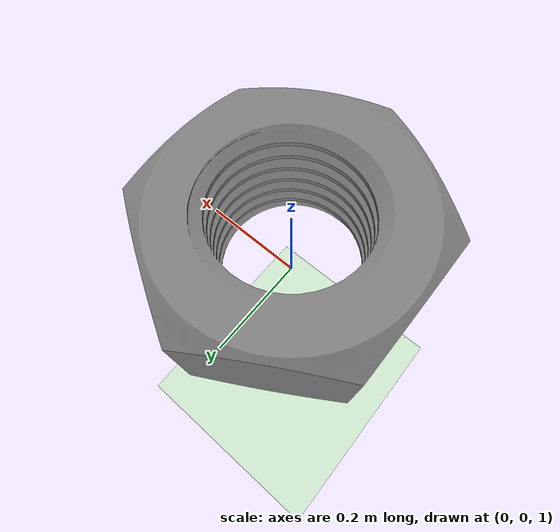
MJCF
<mujoco model="mesh_loading">
    <compiler angle="degree"/>

    <asset>
        <mesh file="meshes/link1_visual.stl" name="mesh_vis" scale="0.01 0.01 0.01"/>
        <mesh file="meshes/link1_collision.stl" name="mesh_col" scale="0.01 0.01 0.01"/>
    </asset>

    <worldbody>

        <light pos="0 0 5" dir="0 0 -1" directional="true"/>
        <geom name="ground" type="plane" size="5 5 0.1" rgba="0.8 0.9 0.8 1"/>

        <body name="robot_link_1" pos="0 0 1">
            <freejoint/>
            <!-- Geom hiển thị (visual) -->
            <geom name="visual_mesh" type="mesh" mesh="mesh_vis" contype="0" conaffinity="0" group="1" rgba="0.5 0.5 0.5 1"/>
            <!-- Geom va chạm (collision) -->
            <geom name="collision_mesh" type="mesh" mesh="mesh_col" rgba="0 1 0 0.2" group="3"/>
        </body>
    </worldbody>
</mujoco>
